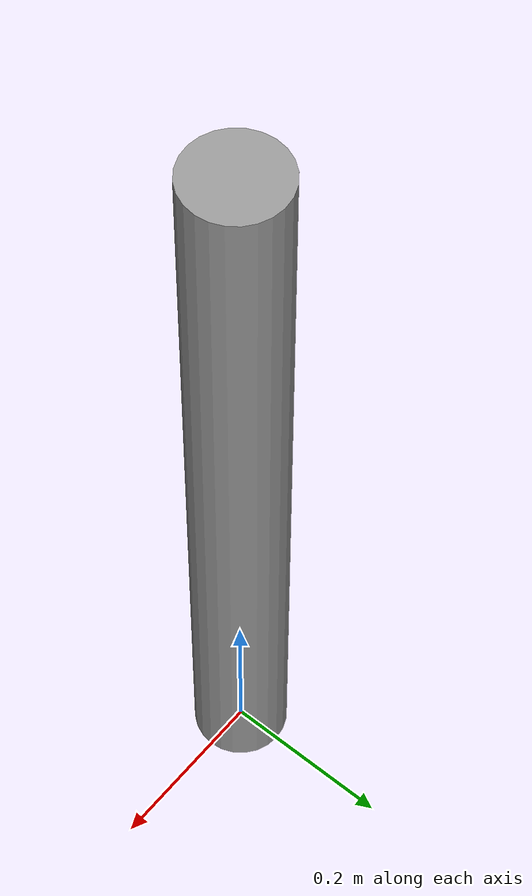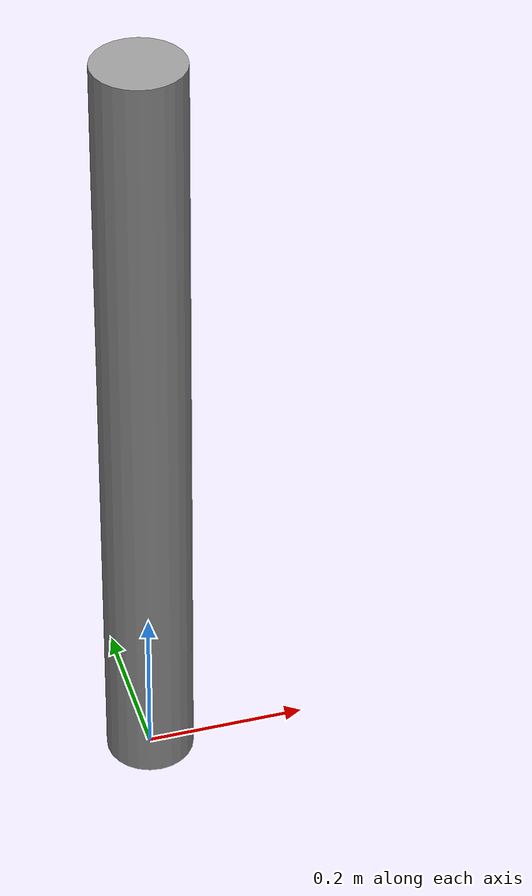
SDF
<?xml version='1.0'?>
<sdf version="1.4">
  <model name='yamasemi_pole'>
    <pose>0 0 0.5 0 0 0</pose>
    <static>0</static>
    <link name='link'>
      <inertial>
        <mass>1</mass>
        <inertia>
          <ixx>0.3</ixx>
          <ixy>0</ixy>
          <ixz>0</ixz>
          <iyy>0</iyy>
          <iyz>0</iyz>
          <izz>0.3</izz>
        </inertia>
      </inertial>
      <collision name='collision'>
        <geometry>
          <cylinder>
            <radius>0.055</radius>
            <length>1</length>
          </cylinder>
        </geometry>
      </collision>
      <visual name='visual'>
        <geometry>
          <cylinder>
            <radius>0.055</radius>
            <length>1</length>
          </cylinder>
        </geometry>
        <material>
          <script>
            <uri>file://media/materials/scripts/gazebo.material</uri>
            <name>Gazebo/Grey</name>
          </script>
        </material>
      </visual>
      <self_collide>1</self_collide>
      <gravity>1</gravity>
    </link>
  </model>
</sdf>
